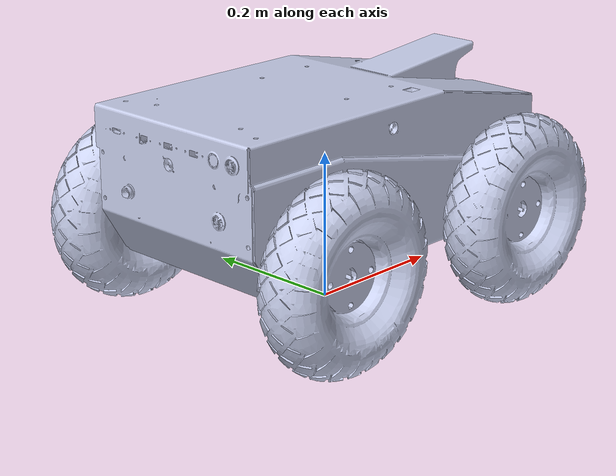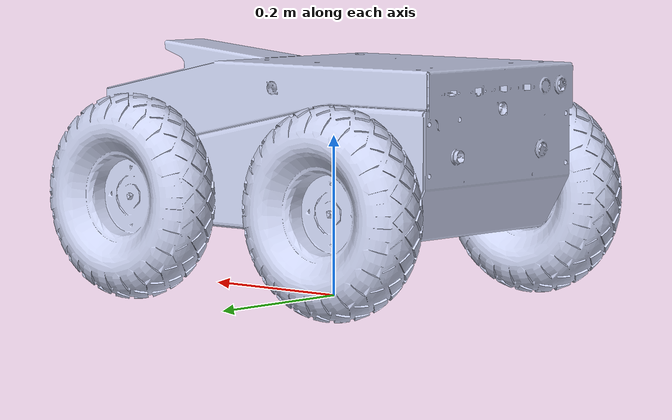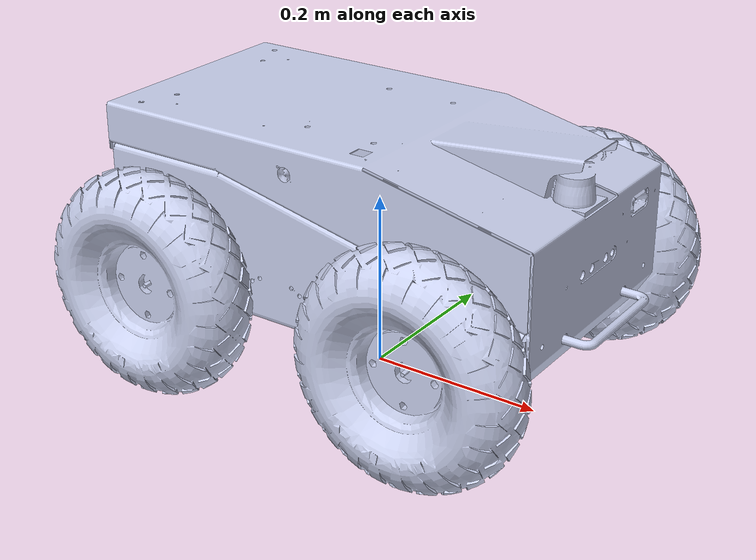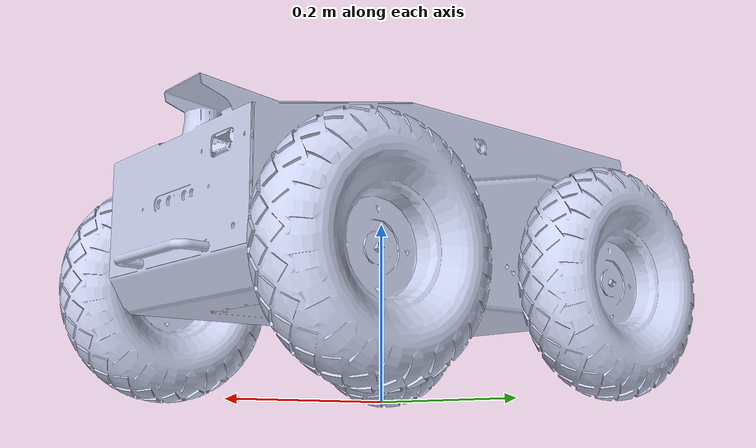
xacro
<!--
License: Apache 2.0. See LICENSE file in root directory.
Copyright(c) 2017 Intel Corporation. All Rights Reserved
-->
<?xml version="1.0"?>

<robot xmlns:xacro="http://www.ros.org/wiki/xacro" name="komodo2_robot" description="Komodo2 Robot">
	<xacro:property name="M_PI" value="3.1415926535897931" />

      <link name="base_footprint"/>

 <joint name="base_footprint_joint" type="fixed">
    <parent link="base_footprint"/>
    <child link="base_link"/>
    <origin xyz="0.00 0.00 0.1275" rpy="0.0 0.0 0.0"/>
  </joint>

  <link
    name="base_link">
    <inertial>
      <origin
        xyz="0.0030152 0.00057861 0.0749"
        rpy="0 0 0" />
      <mass
        value="20.0058" />
      <inertia
        ixx="0.025582"
        ixy="0.0010034"
        ixz="-0.0041152"
        iyy="0.086418"
        iyz="-3.8058E-05"
        izz="0.091994" />
    </inertial>
    <visual>
      <origin
        xyz="0 0 0"
        rpy="0 0 0" />
      <geometry>
        <mesh
          filename="package://komodo2_description/mesh/base.STL" />
      </geometry>
      <material
        name="">
        <color
          rgba="0.79216 0.81961 0.93333 1" />
      </material>
    </visual>
    <collision>
      <origin
        xyz="0 0 0"
        rpy="0 0 0" />
      <geometry>
        <mesh
          filename="package://komodo2_description/mesh/base.STL" />
      </geometry>
    </collision>
  </link>

  <link
    name="rear_left_wheel_link">
    <inertial>
      <origin
        xyz="9.8684E-07 -9.3003E-05 -1.8753E-05"
        rpy="0 0 0" />
      <mass
        value="1.8524" />
      <inertia
        ixx="0.0069046"
        ixy="-3.8717E-08"
        ixz="2.0707E-07"
        iyy="0.17"
        iyz="-1.0124E-07"
        izz="0.0069054" />
      </inertial>
    <visual>
      <origin
        xyz="0 0 0"
        rpy="0 0 0" />
      <geometry>
        <mesh
          filename="package://komodo2_description/mesh/wheel.STL" />
      </geometry>
      <material
        name="">
        <color
          rgba="0.79216 0.81961 0.93333 1" />
      </material>
    </visual>
    <collision>
      <origin
        xyz="0 0 0"
        rpy="${M_PI/2} 0 0" />
      <geometry>
	  <cylinder  length="0.05" radius="0.127"/>
      </geometry>
    </collision>
  </link>
  <joint
    name="rear_left_wheel_joint"
    type="continuous">
    <origin
      xyz="-0.165 0.18955 0"
      rpy="0 0 0" />
    <parent
      link="base_link" />
    <child
      link="rear_left_wheel_link" />
    <axis
      xyz="0 1 0" />
    <limit
      effort="0.4"
      velocity="32.0" />
  </joint>
  <link
    name="front_left_wheel_link">
    <inertial>
      <origin
        xyz="9.8687E-07 -9.3003E-05 -1.8753E-05"
        rpy="0 0 0" />
      <mass
        value="1.8524" />
      <inertia
        ixx="0.0069046"
        ixy="-3.8717E-08"
        ixz="2.0707E-07"
        iyy="0.17"
        iyz="-1.0124E-07"
        izz="0.0069054" />
      </inertial>
    <visual>
      <origin
        xyz="0 0 0"
        rpy="0 0 0" />
      <geometry>
        <mesh
          filename="package://komodo2_description/mesh/wheel.STL" />
      </geometry>
      <material
        name="">
        <color
          rgba="0.79216 0.81961 0.93333 1" />
      </material>
    </visual>
    <collision>
      <origin
        xyz="0 0 0"
        rpy="${M_PI/2} 0 0" />
      <geometry>
	  <cylinder  length="0.05" radius="0.127"/>
      </geometry>
    </collision>
  </link>
  <joint
    name="front_left_wheel_joint"
    type="continuous">
    <origin
      xyz="0.165 0.18955 0"
      rpy="0 0 0" />
    <parent
      link="base_link" />
    <child
      link="front_left_wheel_link" />
    <axis
      xyz="0 1 0" />
    <limit
      effort="0.4"
      velocity="32.0" />
  </joint>
  <link
    name="rear_right_wheel_link">
    <inertial>
      <origin
        xyz="-9.8675E-07 9.3004E-05 -1.8753E-05"
        rpy="0 0 0" />
      <mass
        value="1.8524" />
      <inertia
        ixx="0.0069046"
        ixy="-3.8717E-08"
        ixz="-2.0707E-07"
        iyy="0.17"
        iyz="1.0124E-07"
        izz="0.0069054" />
    </inertial>
    <visual>
      <origin
        xyz="0 0 0"
        rpy="0 0 0" />
      <geometry>
        <mesh
          filename="package://komodo2_description/mesh/wheel.STL" />
      </geometry>
      <material
        name="">
        <color
          rgba="0.79216 0.81961 0.93333 1" />
      </material>
    </visual>
    <collision>
      <origin
        xyz="0 0 0"
        rpy="${M_PI/2} 0 0" />
      <geometry>
	  <cylinder  length="0.05" radius="0.127"/>
      </geometry>
    </collision>
  </link>
  <joint
    name="rear_right_wheel_joint"
    type="continuous">
    <origin
      xyz="-0.165 -0.18955 0"
      rpy="0 0 0" />
    <parent
      link="base_link" />
    <child
      link="rear_right_wheel_link" />
    <axis
      xyz="0 1 0" />
    <limit
      effort="0.4"
      velocity="32.0" />
  </joint>
  <link
    name="front_right_wheel_link">
    <inertial>
      <origin
        xyz="-9.867E-07 9.3004E-05 -1.8753E-05"
        rpy="0 0 0" />
      <mass
        value="1.8524" />
      <inertia
        ixx="0.0069046"
        ixy="-3.8717E-08"
        ixz="-2.0707E-07"
        iyy="0.17"
        iyz="1.0124E-07"
        izz="0.0069054" />
    </inertial>
    <visual>
      <origin
        xyz="0 0 0"
        rpy="0 0 0" />
      <geometry>
        <mesh
          filename="package://komodo2_description/mesh/wheel.STL" />
      </geometry>
      <material
        name="">
        <color
          rgba="0.79216 0.81961 0.93333 1" />
      </material>
    </visual>
    <collision>
      <origin
        xyz="0 0 0"
        rpy="${M_PI/2} 0 0" />
      <geometry>
	  <cylinder  length="0.05" radius="0.127"/>
      </geometry>
    </collision>
  </link>
  <joint
    name="front_right_wheel_joint"
    type="continuous">
    <origin
      xyz="0.165 -0.18955 0"
      rpy="0 0 0" />
    <parent
      link="base_link" />
    <child
      link="front_right_wheel_link" />
    <axis
      xyz="0 1 0" />
    <limit
      effort="0.4"
      velocity="32.0" />
  </joint>
  <link
    name="laser_link" />
  <joint
    name="laser_joint"
    type="fixed">
    <origin
      xyz="0.233497501055752 0 0.141334654748157"
      rpy="0 0 0" />
    <parent
      link="base_link" />
    <child
      link="laser_link" />
    <axis
      xyz="0 0 0" />
    <limit
      effort="0.4"
      velocity="32.0" />
  </joint>
  <link
    name="rgb_cam_link" />
  <joint
    name="rgb_cam_joint"
    type="fixed">
    <origin
      xyz="0.25425 0.0875 0.1"
      rpy="0 0 0" />
    <parent
      link="base_link" />
    <child
      link="rgb_cam_link" />
    <axis
      xyz="0 0 0" />
  </joint>
  <link
    name="rear_urf_link" />
  <joint
    name="rear_urf_joint"
    type="fixed">
    <origin
      xyz="-0.2745 0 0.108"
      rpy="0 0 3.1416" />
    <parent
      link="base_link" />
    <child
      link="rear_urf_link" />
    <axis
      xyz="0 0 0" />
  </joint>
  <link
    name="right_urf_link" />
  <joint
    name="right_urf_joint"
    type="fixed">
    <origin
      xyz="-0.029313 -0.13725 0.13851"
      rpy="0 -2.0713E-16 -1.5708" />
    <parent
      link="base_link" />
    <child
      link="right_urf_link" />
    <axis
      xyz="0 0 0" />
  </joint>
  <link
    name="left_urf_link" />
  <joint
    name="left_urf_joint"
    type="fixed">
    <origin
      xyz="-0.029313 0.13725 0.13851"
      rpy="0 2.0713E-16 1.5708" />
    <parent
      link="base_link" />
    <child
      link="left_urf_link" />
    <axis
      xyz="0 0 0" />
  </joint>

  <link
    name="camera_link" />
    <joint name="camera_joint" type="fixed">
        <origin
        xyz="0.25525 0.0006082 1.863584"
        rpy="0 0 0" />
    <parent
        link="base_link" />
        <child link="camera_link" />
    </joint>
    <!-- xyz="0.25525 0.0006082 0.063584" -->

    <!-- camera depth joints and links -->
    <joint name="camera_depth_joint" type="fixed">
      <origin xyz="0 -0.0122 0" rpy="0 0 0"/>
      <parent link="camera_link"/>
      <child link="camera_depth_frame" />
    </joint>
    <link name="camera_depth_frame"/>

    <joint name="camera_depth_optical_joint" type="fixed">
      <origin xyz="0 0 0" rpy="${-M_PI/2} 0 ${-M_PI/2}" />
      <parent link="camera_depth_frame" />
      <child link="camera_depth_optical_frame" />
    </joint>
    <link name="camera_depth_optical_frame"/>

    <!-- camera left IR joints and links -->
    <joint name="camera_left_ir_joint" type="fixed">
      <origin xyz="0 -0.0322 0" rpy="0 0 0" />
      <parent link="camera_link" />
      <child link="camera_left_ir_frame" />
    </joint>
    <link name="camera_left_ir_frame"/>

    <joint name="camera_left_ir_optical_joint" type="fixed">
      <origin xyz="0 0 0" rpy="${-M_PI/2} 0 ${-M_PI/2}" />
      <parent link="camera_left_ir_frame" />
      <child link="camera_left_ir_optical_frame" />
    </joint>
    <link name="camera_left_ir_optical_frame"/>

    <!-- camera right IR joints and links -->
    <joint name="camera_right_ir_joint" type="fixed">
      <origin xyz="0 0.0178 0" rpy="0 0 0" />
      <parent link="camera_link" />
      <child link="camera_right_ir_frame" />
    </joint>
    <link name="camera_right_ir_frame"/>

    <joint name="camera_right_ir_optical_joint" type="fixed">
      <origin xyz="0 0 0" rpy="${-M_PI/2} 0 ${-M_PI/2}" />
      <parent link="camera_right_ir_frame" />
      <child link="camera_right_ir_optical_frame" />
    </joint>
    <link name="camera_right_ir_optical_frame"/>

    <!-- camera fisheye joints and links -->
    <joint name="camera_fisheye_joint" type="fixed">
      <origin xyz="0 0.0322 0" rpy="0 0 0" />
      <parent link="camera_link" />
      <child link="camera_fisheye_frame" />
    </joint>
    <link name="camera_fisheye_frame"/>

    <joint name="camera_fisheye_optical_joint" type="fixed">
      <origin xyz="0 0 0" rpy="${-M_PI/2} 0 ${-M_PI/2}" />
      <parent link="camera_fisheye_frame" />
      <child link="camera_fisheye_optical_frame" />
    </joint>
    <link name="camera_fisheye_optical_frame"/>

</robot>
